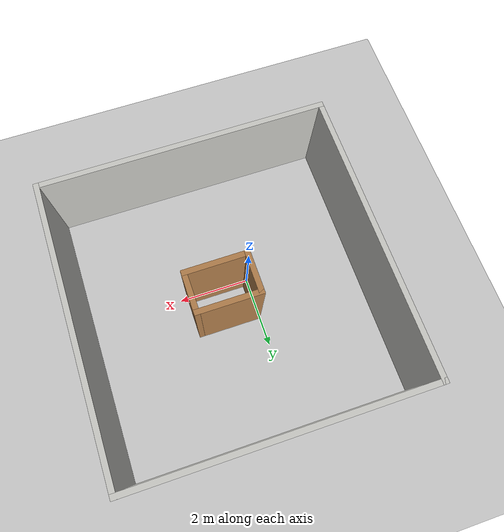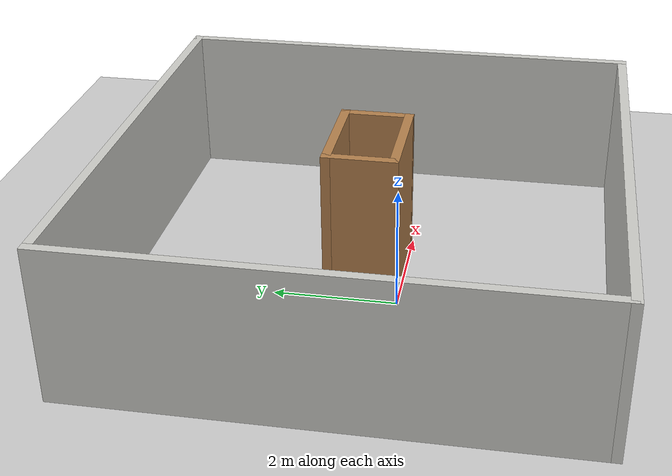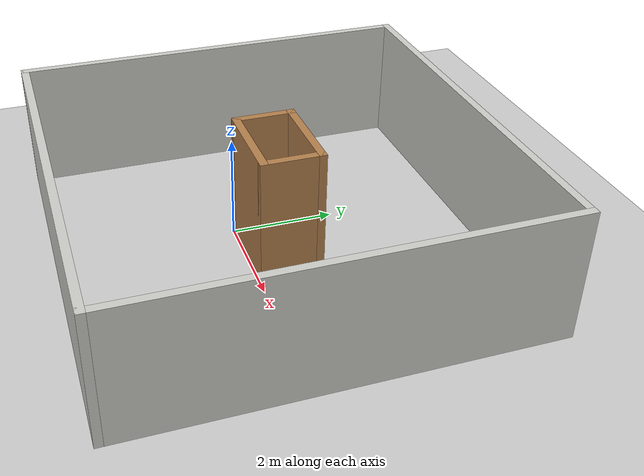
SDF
<sdf version="1.7">
 <world name="default">
  <light name="sun" type="directional">
   <pose>0 0 10 0 -0 0</pose>
   <diffuse>0.8 0.8 0.8 1</diffuse>
   <specular>0.2 0.2 0.2 1</specular>
   <attenuation>
    <range>1000</range>
    <constant>0.9</constant>
    <linear>0.01</linear>
    <quadratic>0.001</quadratic>
   </attenuation>
   <direction>-0.5 0.1 -0.9</direction>
   <spot><inner_angle>0</inner_angle><outer_angle>0</outer_angle><falloff>0</falloff></spot>
  </light>
  <model name="ground_plane">
   <static>1</static>
   <link name="link">
    <collision name="collision">
     <geometry><plane><normal>0 0 1</normal><size>100 100</size></plane></geometry>
     <surface><friction><ode><mu>100</mu><mu2>50</mu2></ode></friction></surface>
    </collision>
    <visual name="visual">
     <cast_shadows>0</cast_shadows>
     <geometry><plane><normal>0 0 1</normal><size>100 100</size></plane></geometry>
     <material>
      <script><uri>file://media/materials/scripts/gazebo.material</uri><name>Gazebo/Grey</name></script>
     </material>
    </visual>
   </link>
  </model>
  <gravity>0 0 -9.8</gravity>
  <magnetic_field>6e-06 2.3e-05 -4.2e-05</magnetic_field>
  <atmosphere type="adiabatic"/>
  <physics type="ode">
   <max_step_size>0.001</max_step_size>
   <real_time_factor>1</real_time_factor>
   <real_time_update_rate>1000</real_time_update_rate>
  </physics>
  <scene><ambient>0.4 0.4 0.4 1</ambient><background>0.7 0.7 0.7 1</background><shadows>1</shadows></scene>
  <spherical_coordinates>
   <surface_model>EARTH_WGS84</surface_model>
   <latitude_deg>0</latitude_deg>
   <longitude_deg>0</longitude_deg>
   <elevation>0</elevation>
   <heading_deg>0</heading_deg>
  </spherical_coordinates>
  <model name="iot4">
   <pose>0.726888 0.547206 0 0 -0 0</pose>
   <link name="Wall_0">
    <collision name="Wall_0_Collision">
     <geometry><box><size>8 0.15 2.5</size></box></geometry>
     <pose>0 0 1.25 0 -0 0</pose>
    </collision>
    <visual name="Wall_0_Visual">
     <pose>0 0 1.25 0 -0 0</pose>
     <geometry><box><size>8 0.15 2.5</size></box></geometry>
     <material>
      <script><uri>file://media/materials/scripts/gazebo.material</uri><name>Gazebo/CeilingTiled</name></script>
      <ambient>1 1 1 1</ambient>
     </material>
     <meta><layer>0</layer></meta>
    </visual>
    <pose>-3.925 0 0 0 -0 1.5708</pose>
   </link>
   <link name="Wall_1">
    <collision name="Wall_1_Collision">
     <geometry><box><size>8 0.15 2.5</size></box></geometry>
     <pose>0 0 1.25 0 -0 0</pose>
    </collision>
    <visual name="Wall_1_Visual">
     <pose>0 0 1.25 0 -0 0</pose>
     <geometry><box><size>8 0.15 2.5</size></box></geometry>
     <material>
      <script><uri>file://media/materials/scripts/gazebo.material</uri><name>Gazebo/CeilingTiled</name></script>
      <ambient>1 1 1 1</ambient>
     </material>
     <meta><layer>0</layer></meta>
    </visual>
    <pose>0 3.925 0 0 -0 0</pose>
   </link>
   <link name="Wall_13">
    <collision name="Wall_13_Collision">
     <geometry><box><size>1.2 0.15 2.5</size></box></geometry>
     <pose>0 0 1.25 0 -0 0</pose>
    </collision>
    <visual name="Wall_13_Visual">
     <pose>0 0 1.25 0 -0 0</pose>
     <geometry><box><size>1.2 0.15 2.5</size></box></geometry>
     <material>
      <script><uri>file://media/materials/scripts/gazebo.material</uri><name>Gazebo/Wood</name></script>
      <ambient>1 1 1 1</ambient>
     </material>
     <meta><layer>0</layer></meta>
    </visual>
    <pose>-0.650553 0.050455 0 0 -0 -1.5708</pose>
   </link>
   <link name="Wall_14">
    <collision name="Wall_14_Collision">
     <geometry><box><size>1.8 0.15 2.5</size></box></geometry>
     <pose>0 0 1.25 0 -0 0</pose>
    </collision>
    <visual name="Wall_14_Visual">
     <pose>0 0 1.25 0 -0 0</pose>
     <geometry><box><size>1.8 0.15 2.5</size></box></geometry>
     <material>
      <script><uri>file://media/materials/scripts/gazebo.material</uri><name>Gazebo/Wood</name></script>
      <ambient>1 1 1 1</ambient>
     </material>
     <meta><layer>0</layer></meta>
    </visual>
    <pose>0.174447 -0.474545 0 0 -0 0</pose>
   </link>
   <link name="Wall_15">
    <collision name="Wall_15_Collision">
     <geometry><box><size>1.2 0.15 2.5</size></box></geometry>
     <pose>0 0 1.25 0 -0 0</pose>
    </collision>
    <visual name="Wall_15_Visual">
     <pose>0 0 1.25 0 -0 0</pose>
     <geometry><box><size>1.2 0.15 2.5</size></box></geometry>
     <material>
      <script><uri>file://media/materials/scripts/gazebo.material</uri><name>Gazebo/Wood</name></script>
      <ambient>1 1 1 1</ambient>
     </material>
     <meta><layer>0</layer></meta>
    </visual>
    <pose>0.999447 0.050455 0 0 -0 1.5708</pose>
   </link>
   <link name="Wall_16">
    <collision name="Wall_16_Collision">
     <geometry><box><size>1.8 0.15 2.5</size></box></geometry>
     <pose>0 0 1.25 0 -0 0</pose>
    </collision>
    <visual name="Wall_16_Visual">
     <pose>0 0 1.25 0 -0 0</pose>
     <geometry><box><size>1.8 0.15 2.5</size></box></geometry>
     <material>
      <script><uri>file://media/materials/scripts/gazebo.material</uri><name>Gazebo/Wood</name></script>
      <ambient>1 1 1 1</ambient>
     </material>
     <meta><layer>0</layer></meta>
    </visual>
    <pose>0.174447 0.575455 0 0 -0 3.14159</pose>
   </link>
   <link name="Wall_2">
    <collision name="Wall_2_Collision">
     <geometry><box><size>8 0.15 2.5</size></box></geometry>
     <pose>0 0 1.25 0 -0 0</pose>
    </collision>
    <visual name="Wall_2_Visual">
     <pose>0 0 1.25 0 -0 0</pose>
     <geometry><box><size>8 0.15 2.5</size></box></geometry>
     <material>
      <script><uri>file://media/materials/scripts/gazebo.material</uri><name>Gazebo/CeilingTiled</name></script>
      <ambient>1 1 1 1</ambient>
     </material>
     <meta><layer>0</layer></meta>
    </visual>
    <pose>3.925 0 0 0 -0 -1.5708</pose>
   </link>
   <link name="Wall_3">
    <collision name="Wall_3_Collision">
     <geometry><box><size>8 0.15 2.5</size></box></geometry>
     <pose>0 0 1.25 0 -0 0</pose>
    </collision>
    <visual name="Wall_3_Visual">
     <pose>0 0 1.25 0 -0 0</pose>
     <geometry><box><size>8 0.15 2.5</size></box></geometry>
     <material>
      <script><uri>file://media/materials/scripts/gazebo.material</uri><name>Gazebo/CeilingTiled</name></script>
      <ambient>1 1 1 1</ambient>
     </material>
     <meta><layer>0</layer></meta>
    </visual>
    <pose>0 -3.925 0 0 -0 3.14159</pose>
   </link>
   <static>1</static>
  </model>
 </world>
</sdf>
